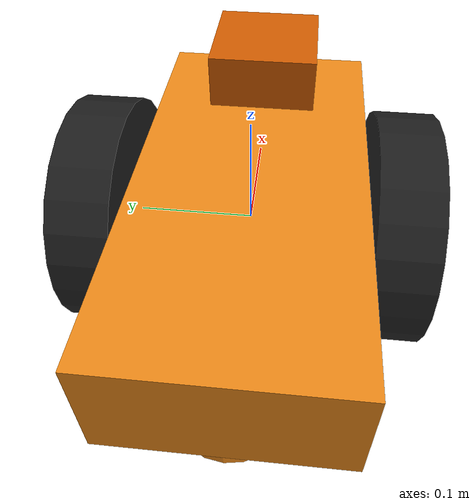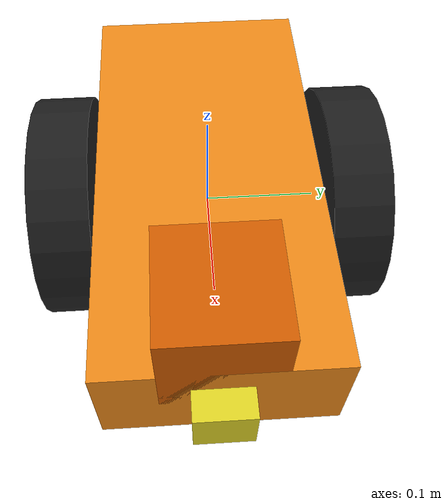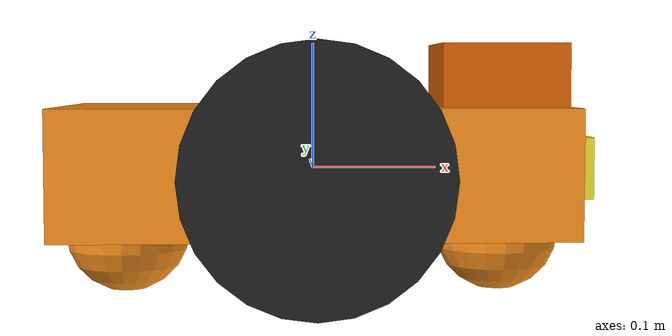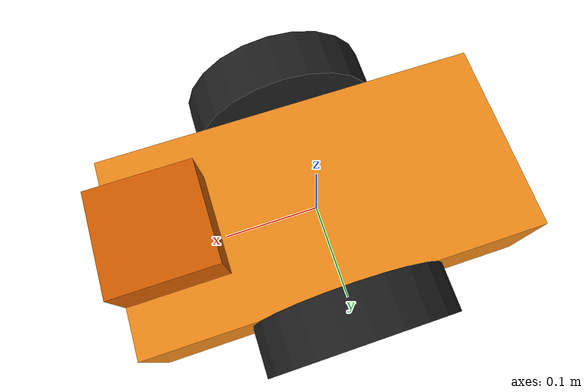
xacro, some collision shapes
<?xml version='1.0'?>

<robot name="my_robot" xmlns:xacro="http://www.ros.org/wiki/xacro">

  <xacro:include filename="$(find my_robot)/urdf/my_robot.gazebo" />

  <link name="robot_footprint"></link>

  <joint name="robot_footprint_joint" type="fixed">
    <origin xyz="0 0 0" rpy="0 0 0" />
    <parent link="robot_footprint"/>
    <child link="chassis" />
  </joint>

  <link name='chassis'>
    <pose>0 0 0.1 0 0 0</pose>

    <inertial>
      <mass value="15.0"/>
      <origin xyz="0.0 0 0" rpy=" 0 0 0"/>
      <inertia
          ixx="0.1" ixy="0" ixz="0"
          iyy="0.1" iyz="0"
          izz="0.1"
      />
    </inertial>

    <collision name='collision'>
      <origin xyz="0 0 0" rpy=" 0 0 0"/>
      <geometry>
        <box size=".4 .2 .1"/>
      </geometry>
    </collision>

    <visual name='chassis_visual'>
      <origin xyz="0 0 0" rpy=" 0 0 0"/>
      <geometry>
        <box size=".4 .2 .1"/>
      </geometry>
    </visual>

    <collision name='back_caster_collision'>
      <origin xyz="-0.15 0 -0.05" rpy=" 0 0 0"/>
      <geometry>
        <sphere radius="0.0499"/>
      </geometry>
    </collision>

    <visual name='back_caster_visual'>
      <origin xyz="-0.15 0 -0.05" rpy=" 0 0 0"/>
      <geometry>
        <sphere radius="0.05"/>
      </geometry>
    </visual>

    <collision name='front_caster_collision'>
      <origin xyz="0.15 0 -0.05" rpy=" 0 0 0"/>
      <geometry>
        <sphere radius="0.0499"/>
      </geometry>
    </collision>

    <visual name='front_caster_visual'>
      <origin xyz="0.15 0 -0.05" rpy=" 0 0 0"/>
      <geometry>
        <sphere radius="0.05"/>
      </geometry>
    </visual>

  </link>

 <gazebo reference="left_wheel">
  <material>Gazebo/Black</material>
	    </gazebo>

  <gazebo reference="right_wheel">
  <material>Gazebo/Black</material>
	    </gazebo>

   <gazebo reference="chassis">
  <material>Gazebo/Orange</material>
	    </gazebo>

   <gazebo reference="camera">
  <material>Gazebo/Yellow</material>
	    </gazebo>

  <link name="left_wheel">
     <inertial>
            <origin xyz="0 0 0" rpy="0 1.5707 1.5707"/>
            <mass value="5.0" />
            <inertia ixx="0.1" ixy="0.0" ixz="0.0" iyy="0.1" iyz="0.0" izz="0.1"/>
        </inertial>
        <collision>
            <origin xyz="0 0 0" rpy="0 1.5707 1.5707"/>
            <geometry>
                <cylinder radius="0.1" length="0.05"/>
            </geometry>
        </collision>
        <visual>
            <origin rpy="0 1.5707 1.5707" xyz="0 0 0"/>
            <geometry>
              <cylinder radius="0.1" length="0.05"/>
            </geometry>
        </visual>
    </link>

      <link name="right_wheel">
     <inertial>
            <origin xyz="0 0 0" rpy="0 1.5707 1.5707"/>
            <mass value="5.0" />
            <inertia ixx="0.1" ixy="0.0" ixz="0.0" iyy="0.1" iyz="0.0" izz="0.1"/>
        </inertial>
        <collision>
            <origin xyz="0 0 0" rpy="0 1.5707 1.5707"/>
            <geometry>
                <cylinder radius="0.1" length="0.05"/>
            </geometry>
        </collision>
        <visual>
            <origin rpy="0 1.5707 1.5707" xyz="0 0 0"/>
            <geometry>
                 <cylinder radius="0.1" length="0.05"/>
            </geometry>
        </visual>
    </link>

     <link name="camera">
     <inertial>
            <origin xyz="0.05 0.05 0.05" rpy="0 0 0"/>
            <mass value="0.1" />
            <inertia ixx="1e-6" ixy="0" ixz="0" iyy="1e-6" iyz="0" izz="1e-6"/>
        </inertial>
        <collision>
            <origin xyz="0 0 0" rpy="0 0 0"/>
            <geometry>
                <box size="0.05 0.05 0.05"/>
            </geometry>
        </collision>
        <visual>
            <origin rpy="0 0 0" xyz="0 0 0"/>
            <geometry>
                <box size="0.05 0.05 0.05"/>
            </geometry>
        </visual>
    </link>

    <link name="hokuyo">
     <inertial>
            <origin xyz="0 0 0" rpy="0 0 0"/>
            <mass value="1e-5" />
            <inertia ixx="1e-6" ixy="0" ixz="0" iyy="1e-6" iyz="0" izz="1e-6"/>
        </inertial>
        <collision>
            <origin xyz="0 0 0" rpy="0 0 0"/>
            <geometry>
                <box size="0.1 0.1 0.1"/>
            </geometry>
        </collision>
        <visual>
            <origin rpy="0 0 0" xyz="0 0 0"/>
            <geometry>
                <mesh filename="package://my_robot/meshes/hokuyo.dae"/>
            </geometry>
        </visual>
    </link>

    <joint type="fixed" name="camera_joint">
       <origin xyz="0.2 0 0" rpy="0 0 0"/>
       <child link="camera"/>
       <parent link="chassis"/>
       <axis xyz="0 1 0" rpy="0 0 0"/>
     </joint>

     <joint type="fixed" name="hokuyo_joint">
       <origin xyz="0.15 0 0.05" rpy="0 0 0"/>
       <child link="hokuyo"/>
       <parent link="chassis"/>
       <axis xyz="0 1 0" rpy="0 0 0"/>
     </joint>

     <joint type="continuous" name="left_wheel_hinge">
       <origin xyz="0 0.125 0" rpy="0 0 0"/>
       <child link="left_wheel"/>
       <parent link="chassis"/>
       <axis xyz="0 1 0" rpy="0 0 0"/>
       <limit effort="10000" velocity="1000"/>
       <dynamics damping="1.0" friction="1.0"/>
     </joint>

      <joint type="continuous" name="right_wheel_hinge">
       <origin xyz="0 -0.125 0" rpy="0 0 0"/>
       <child link="right_wheel"/>
       <parent link="chassis"/>
       <axis xyz="0 1 0" rpy="0 0 0"/>
       <limit effort="10000" velocity="1000"/>
       <dynamics damping="1.0" friction="1.0"/>
     </joint>

      <link name="camera_link_optical">
      </link>

      <joint name="camera_optical_joint" type="fixed">
        <origin xyz="0 0 0" rpy="-1.5707 0 -1.5707"/>
        <parent link="camera"/>
        <child link="camera_link_optical"/>
      </joint>

</robot>
